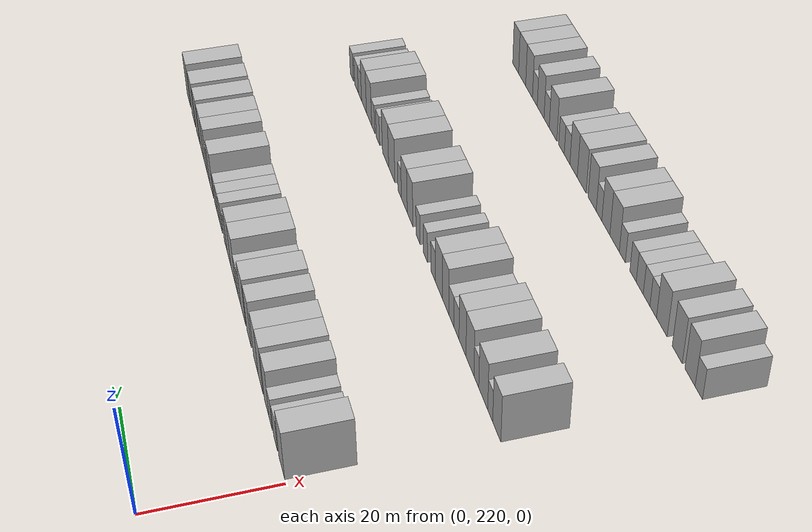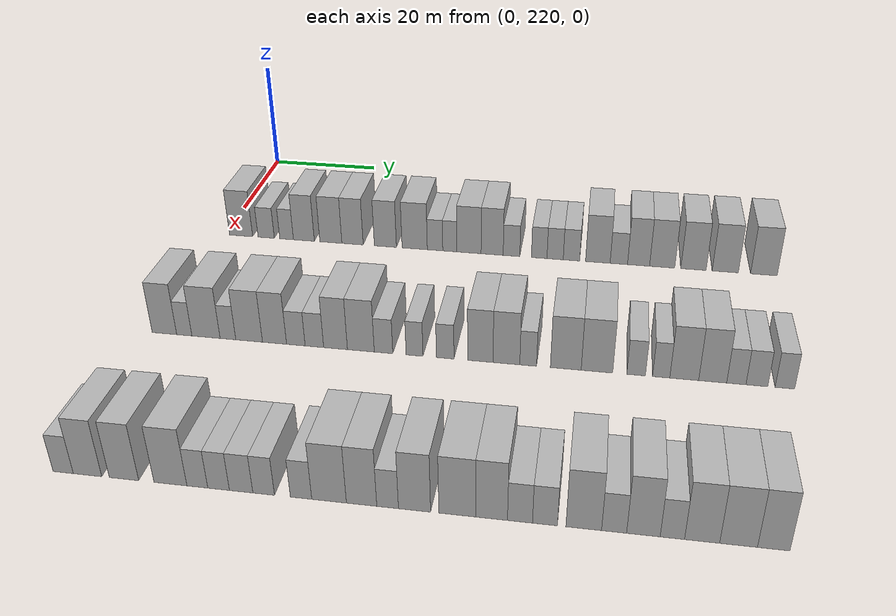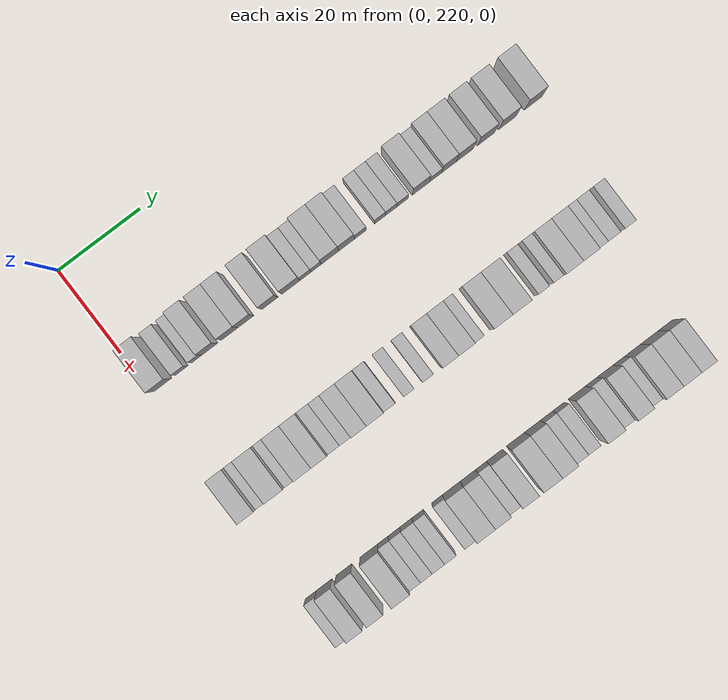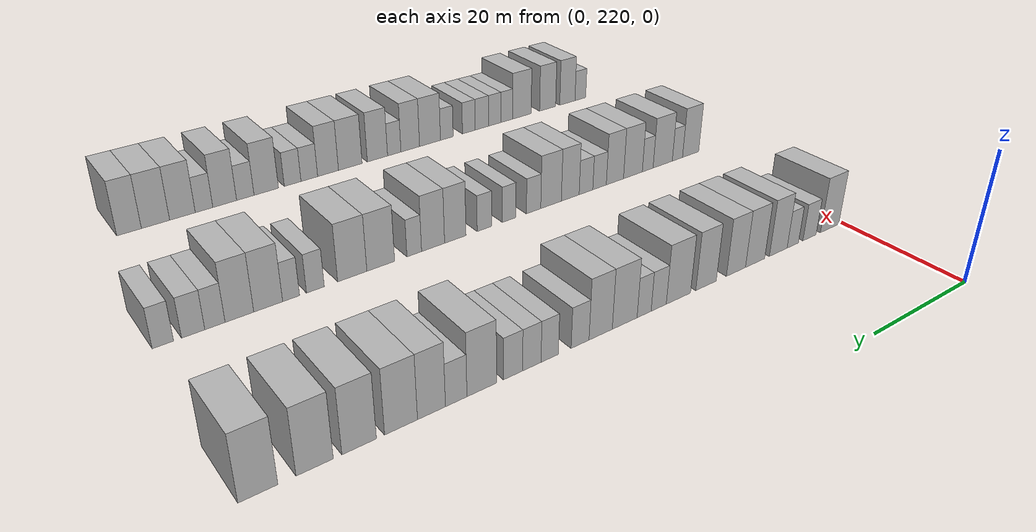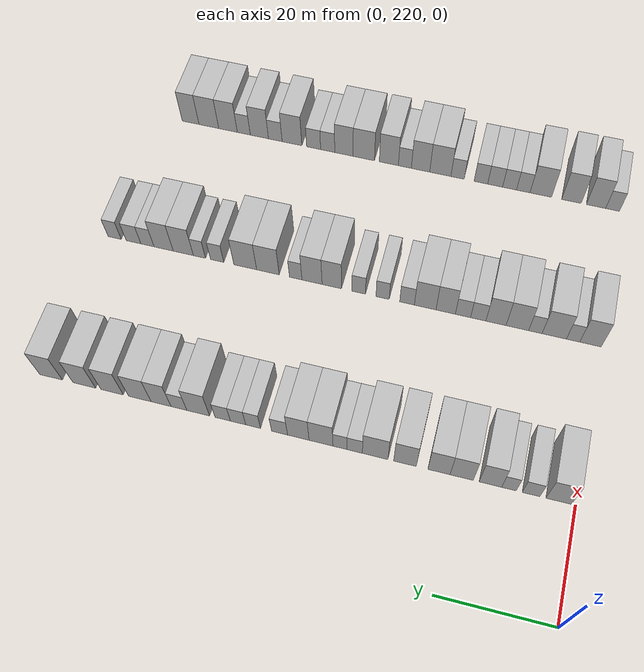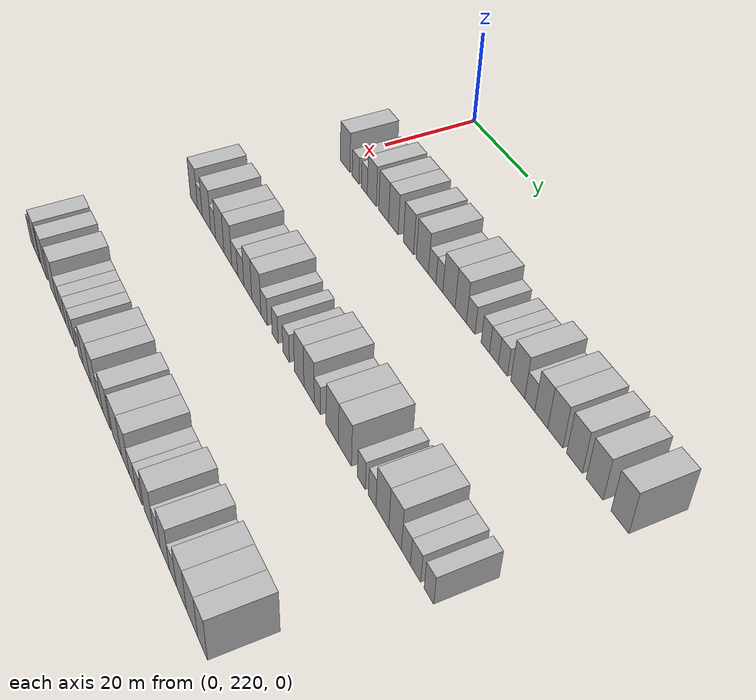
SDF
<sdf version="1.6">
 <world name="default">
  <model name="building_150">
   <static>1</static>
   <pose>25.0000 222.8629 0 0.000000 0.000000 0.000000</pose>
   <link name="link">
    <pose>0 0 4.50 0 0 0</pose>
    <collision name="collision"><geometry><box><size>10.0000 4.2605 9.0000</size></box></geometry></collision>
    <visual name="visual">
     <cast_shadows>0</cast_shadows>
     <geometry><box><size>10.0000 4.2605 9.0000</size></box></geometry>
     <material>
      <script>
       <uri>model://HANNAS_wall/materials/scripts</uri>
       <uri>model://HANNAS_wall/materials/textures</uri>
       <name>vrc/HANNAS_wall</name>
      </script>
     </material>
    </visual>
   </link>
  </model>
  <model name="building_151">
   <static>1</static>
   <pose>25.0000 227.4836 0 0.000000 0.000000 0.000000</pose>
   <link name="link">
    <pose>0 0 3.00 0 0 0</pose>
    <collision name="collision"><geometry><box><size>10.0000 2.9809 6.0000</size></box></geometry></collision>
    <visual name="visual">
     <cast_shadows>0</cast_shadows>
     <geometry><box><size>10.0000 2.9809 6.0000</size></box></geometry>
     <material>
      <script>
       <uri>model://HANNAS_wall/materials/scripts</uri>
       <uri>model://HANNAS_wall/materials/textures</uri>
       <name>vrc/HANNAS_wall</name>
      </script>
     </material>
    </visual>
   </link>
  </model>
  <model name="building_152">
   <static>1</static>
   <pose>25.0000 231.2204 0 0.000000 0.000000 0.000000</pose>
   <link name="link">
    <pose>0 0 3.00 0 0 0</pose>
    <collision name="collision"><geometry><box><size>10.0000 2.4926 6.0000</size></box></geometry></collision>
    <visual name="visual">
     <cast_shadows>0</cast_shadows>
     <geometry><box><size>10.0000 2.4926 6.0000</size></box></geometry>
     <material>
      <script>
       <uri>model://HANNAS_wall/materials/scripts</uri>
       <uri>model://HANNAS_wall/materials/textures</uri>
       <name>vrc/HANNAS_wall</name>
      </script>
     </material>
    </visual>
   </link>
  </model>
  <model name="building_153">
   <static>1</static>
   <pose>25.0000 234.3687 0 0.000000 0.000000 0.000000</pose>
   <link name="link">
    <pose>0 0 4.50 0 0 0</pose>
    <collision name="collision"><geometry><box><size>10.0000 3.8041 9.0000</size></box></geometry></collision>
    <visual name="visual">
     <cast_shadows>0</cast_shadows>
     <geometry><box><size>10.0000 3.8041 9.0000</size></box></geometry>
     <material>
      <script>
       <uri>model://HANNAS_wall/materials/scripts</uri>
       <uri>model://HANNAS_wall/materials/textures</uri>
       <name>vrc/HANNAS_wall</name>
      </script>
     </material>
    </visual>
   </link>
  </model>
  <model name="building_154">
   <static>1</static>
   <pose>25.0000 239.2609 0 0.000000 0.000000 0.000000</pose>
   <link name="link">
    <pose>0 0 4.50 0 0 0</pose>
    <collision name="collision"><geometry><box><size>10.0000 3.9802 9.0000</size></box></geometry></collision>
    <visual name="visual">
     <cast_shadows>0</cast_shadows>
     <geometry><box><size>10.0000 3.9802 9.0000</size></box></geometry>
     <material>
      <script>
       <uri>model://HANNAS_wall/materials/scripts</uri>
       <uri>model://HANNAS_wall/materials/textures</uri>
       <name>vrc/HANNAS_wall</name>
      </script>
     </material>
    </visual>
   </link>
  </model>
  <model name="building_155">
   <static>1</static>
   <pose>25.0000 243.1626 0 0.000000 0.000000 0.000000</pose>
   <link name="link">
    <pose>0 0 4.50 0 0 0</pose>
    <collision name="collision"><geometry><box><size>10.0000 3.8231 9.0000</size></box></geometry></collision>
    <visual name="visual">
     <cast_shadows>0</cast_shadows>
     <geometry><box><size>10.0000 3.8231 9.0000</size></box></geometry>
     <material>
      <script>
       <uri>model://HANNAS_wall/materials/scripts</uri>
       <uri>model://HANNAS_wall/materials/textures</uri>
       <name>vrc/HANNAS_wall</name>
      </script>
     </material>
    </visual>
   </link>
  </model>
  <model name="building_156">
   <static>1</static>
   <pose>25.0000 249.0395 0 0.000000 0.000000 0.000000</pose>
   <link name="link">
    <pose>0 0 4.50 0 0 0</pose>
    <collision name="collision"><geometry><box><size>10.0000 3.9307 9.0000</size></box></geometry></collision>
    <visual name="visual">
     <cast_shadows>0</cast_shadows>
     <geometry><box><size>10.0000 3.9307 9.0000</size></box></geometry>
     <material>
      <script>
       <uri>model://HANNAS_wall/materials/scripts</uri>
       <uri>model://HANNAS_wall/materials/textures</uri>
       <name>vrc/HANNAS_wall</name>
      </script>
     </material>
    </visual>
   </link>
  </model>
  <model name="building_157">
   <static>1</static>
   <pose>25.0000 254.2369 0 0.000000 0.000000 0.000000</pose>
   <link name="link">
    <pose>0 0 4.50 0 0 0</pose>
    <collision name="collision"><geometry><box><size>10.0000 4.4640 9.0000</size></box></geometry></collision>
    <visual name="visual">
     <cast_shadows>0</cast_shadows>
     <geometry><box><size>10.0000 4.4640 9.0000</size></box></geometry>
     <material>
      <script>
       <uri>model://HANNAS_wall/materials/scripts</uri>
       <uri>model://HANNAS_wall/materials/textures</uri>
       <name>vrc/HANNAS_wall</name>
      </script>
     </material>
    </visual>
   </link>
  </model>
  <model name="building_158">
   <static>1</static>
   <pose>25.0000 257.8265 0 0.000000 0.000000 0.000000</pose>
   <link name="link">
    <pose>0 0 3.00 0 0 0</pose>
    <collision name="collision"><geometry><box><size>10.0000 2.7153 6.0000</size></box></geometry></collision>
    <visual name="visual">
     <cast_shadows>0</cast_shadows>
     <geometry><box><size>10.0000 2.7153 6.0000</size></box></geometry>
     <material>
      <script>
       <uri>model://HANNAS_wall/materials/scripts</uri>
       <uri>model://HANNAS_wall/materials/textures</uri>
       <name>vrc/HANNAS_wall</name>
      </script>
     </material>
    </visual>
   </link>
  </model>
  <model name="building_159">
   <static>1</static>
   <pose>25.0000 260.4134 0 0.000000 0.000000 0.000000</pose>
   <link name="link">
    <pose>0 0 3.00 0 0 0</pose>
    <collision name="collision"><geometry><box><size>10.0000 2.4586 6.0000</size></box></geometry></collision>
    <visual name="visual">
     <cast_shadows>0</cast_shadows>
     <geometry><box><size>10.0000 2.4586 6.0000</size></box></geometry>
     <material>
      <script>
       <uri>model://HANNAS_wall/materials/scripts</uri>
       <uri>model://HANNAS_wall/materials/textures</uri>
       <name>vrc/HANNAS_wall</name>
      </script>
     </material>
    </visual>
   </link>
  </model>
  <model name="building_160">
   <static>1</static>
   <pose>25.0000 263.7593 0 0.000000 0.000000 0.000000</pose>
   <link name="link">
    <pose>0 0 4.50 0 0 0</pose>
    <collision name="collision"><geometry><box><size>10.0000 4.2332 9.0000</size></box></geometry></collision>
    <visual name="visual">
     <cast_shadows>0</cast_shadows>
     <geometry><box><size>10.0000 4.2332 9.0000</size></box></geometry>
     <material>
      <script>
       <uri>model://HANNAS_wall/materials/scripts</uri>
       <uri>model://HANNAS_wall/materials/textures</uri>
       <name>vrc/HANNAS_wall</name>
      </script>
     </material>
    </visual>
   </link>
  </model>
  <model name="building_161">
   <static>1</static>
   <pose>25.0000 267.7927 0 0.000000 0.000000 0.000000</pose>
   <link name="link">
    <pose>0 0 4.50 0 0 0</pose>
    <collision name="collision"><geometry><box><size>10.0000 3.8337 9.0000</size></box></geometry></collision>
    <visual name="visual">
     <cast_shadows>0</cast_shadows>
     <geometry><box><size>10.0000 3.8337 9.0000</size></box></geometry>
     <material>
      <script>
       <uri>model://HANNAS_wall/materials/scripts</uri>
       <uri>model://HANNAS_wall/materials/textures</uri>
       <name>vrc/HANNAS_wall</name>
      </script>
     </material>
    </visual>
   </link>
  </model>
  <model name="building_162">
   <static>1</static>
   <pose>25.0000 271.1417 0 0.000000 0.000000 0.000000</pose>
   <link name="link">
    <pose>0 0 3.00 0 0 0</pose>
    <collision name="collision"><geometry><box><size>10.0000 2.8642 6.0000</size></box></geometry></collision>
    <visual name="visual">
     <cast_shadows>0</cast_shadows>
     <geometry><box><size>10.0000 2.8642 6.0000</size></box></geometry>
     <material>
      <script>
       <uri>model://HANNAS_wall/materials/scripts</uri>
       <uri>model://HANNAS_wall/materials/textures</uri>
       <name>vrc/HANNAS_wall</name>
      </script>
     </material>
    </visual>
   </link>
  </model>
  <model name="building_163">
   <static>1</static>
   <pose>25.0000 275.9058 0 0.000000 0.000000 0.000000</pose>
   <link name="link">
    <pose>0 0 3.00 0 0 0</pose>
    <collision name="collision"><geometry><box><size>10.0000 2.6641 6.0000</size></box></geometry></collision>
    <visual name="visual">
     <cast_shadows>0</cast_shadows>
     <geometry><box><size>10.0000 2.6641 6.0000</size></box></geometry>
     <material>
      <script>
       <uri>model://HANNAS_wall/materials/scripts</uri>
       <uri>model://HANNAS_wall/materials/textures</uri>
       <name>vrc/HANNAS_wall</name>
      </script>
     </material>
    </visual>
   </link>
  </model>
  <model name="building_164">
   <static>1</static>
   <pose>25.0000 278.6231 0 0.000000 0.000000 0.000000</pose>
   <link name="link">
    <pose>0 0 3.00 0 0 0</pose>
    <collision name="collision"><geometry><box><size>10.0000 2.7704 6.0000</size></box></geometry></collision>
    <visual name="visual">
     <cast_shadows>0</cast_shadows>
     <geometry><box><size>10.0000 2.7704 6.0000</size></box></geometry>
     <material>
      <script>
       <uri>model://HANNAS_wall/materials/scripts</uri>
       <uri>model://HANNAS_wall/materials/textures</uri>
       <name>vrc/HANNAS_wall</name>
      </script>
     </material>
    </visual>
   </link>
  </model>
  <model name="building_165">
   <static>1</static>
   <pose>25.0000 281.4026 0 0.000000 0.000000 0.000000</pose>
   <link name="link">
    <pose>0 0 3.00 0 0 0</pose>
    <collision name="collision"><geometry><box><size>10.0000 2.7887 6.0000</size></box></geometry></collision>
    <visual name="visual">
     <cast_shadows>0</cast_shadows>
     <geometry><box><size>10.0000 2.7887 6.0000</size></box></geometry>
     <material>
      <script>
       <uri>model://HANNAS_wall/materials/scripts</uri>
       <uri>model://HANNAS_wall/materials/textures</uri>
       <name>vrc/HANNAS_wall</name>
      </script>
     </material>
    </visual>
   </link>
  </model>
  <model name="building_166">
   <static>1</static>
   <pose>25.0000 285.8721 0 0.000000 0.000000 0.000000</pose>
   <link name="link">
    <pose>0 0 4.50 0 0 0</pose>
    <collision name="collision"><geometry><box><size>10.0000 4.1503 9.0000</size></box></geometry></collision>
    <visual name="visual">
     <cast_shadows>0</cast_shadows>
     <geometry><box><size>10.0000 4.1503 9.0000</size></box></geometry>
     <material>
      <script>
       <uri>model://HANNAS_wall/materials/scripts</uri>
       <uri>model://HANNAS_wall/materials/textures</uri>
       <name>vrc/HANNAS_wall</name>
      </script>
     </material>
    </visual>
   </link>
  </model>
  <model name="building_167">
   <static>1</static>
   <pose>25.0000 289.4068 0 0.000000 0.000000 0.000000</pose>
   <link name="link">
    <pose>0 0 3.00 0 0 0</pose>
    <collision name="collision"><geometry><box><size>10.0000 2.9191 6.0000</size></box></geometry></collision>
    <visual name="visual">
     <cast_shadows>0</cast_shadows>
     <geometry><box><size>10.0000 2.9191 6.0000</size></box></geometry>
     <material>
      <script>
       <uri>model://HANNAS_wall/materials/scripts</uri>
       <uri>model://HANNAS_wall/materials/textures</uri>
       <name>vrc/HANNAS_wall</name>
      </script>
     </material>
    </visual>
   </link>
  </model>
  <model name="building_168">
   <static>1</static>
   <pose>25.0000 292.7083 0 0.000000 0.000000 0.000000</pose>
   <link name="link">
    <pose>0 0 4.50 0 0 0</pose>
    <collision name="collision"><geometry><box><size>10.0000 3.6837 9.0000</size></box></geometry></collision>
    <visual name="visual">
     <cast_shadows>0</cast_shadows>
     <geometry><box><size>10.0000 3.6837 9.0000</size></box></geometry>
     <material>
      <script>
       <uri>model://HANNAS_wall/materials/scripts</uri>
       <uri>model://HANNAS_wall/materials/textures</uri>
       <name>vrc/HANNAS_wall</name>
      </script>
     </material>
    </visual>
   </link>
  </model>
  <model name="building_169">
   <static>1</static>
   <pose>25.0000 296.6415 0 0.000000 0.000000 0.000000</pose>
   <link name="link">
    <pose>0 0 4.50 0 0 0</pose>
    <collision name="collision"><geometry><box><size>10.0000 4.1828 9.0000</size></box></geometry></collision>
    <visual name="visual">
     <cast_shadows>0</cast_shadows>
     <geometry><box><size>10.0000 4.1828 9.0000</size></box></geometry>
     <material>
      <script>
       <uri>model://HANNAS_wall/materials/scripts</uri>
       <uri>model://HANNAS_wall/materials/textures</uri>
       <name>vrc/HANNAS_wall</name>
      </script>
     </material>
    </visual>
   </link>
  </model>
  <model name="building_170">
   <static>1</static>
   <pose>25.0000 301.8199 0 0.000000 0.000000 0.000000</pose>
   <link name="link">
    <pose>0 0 4.50 0 0 0</pose>
    <collision name="collision"><geometry><box><size>10.0000 4.1740 9.0000</size></box></geometry></collision>
    <visual name="visual">
     <cast_shadows>0</cast_shadows>
     <geometry><box><size>10.0000 4.1740 9.0000</size></box></geometry>
     <material>
      <script>
       <uri>model://HANNAS_wall/materials/scripts</uri>
       <uri>model://HANNAS_wall/materials/textures</uri>
       <name>vrc/HANNAS_wall</name>
      </script>
     </material>
    </visual>
   </link>
  </model>
  <model name="building_171">
   <static>1</static>
   <pose>25.0000 307.0449 0 0.000000 0.000000 0.000000</pose>
   <link name="link">
    <pose>0 0 4.50 0 0 0</pose>
    <collision name="collision"><geometry><box><size>10.0000 4.2760 9.0000</size></box></geometry></collision>
    <visual name="visual">
     <cast_shadows>0</cast_shadows>
     <geometry><box><size>10.0000 4.2760 9.0000</size></box></geometry>
     <material>
      <script>
       <uri>model://HANNAS_wall/materials/scripts</uri>
       <uri>model://HANNAS_wall/materials/textures</uri>
       <name>vrc/HANNAS_wall</name>
      </script>
     </material>
    </visual>
   </link>
  </model>
  <model name="building_172">
   <static>1</static>
   <pose>25.0000 313.3371 0 0.000000 0.000000 0.000000</pose>
   <link name="link">
    <pose>0 0 4.50 0 0 0</pose>
    <collision name="collision"><geometry><box><size>10.0000 4.3084 9.0000</size></box></geometry></collision>
    <visual name="visual">
     <cast_shadows>0</cast_shadows>
     <geometry><box><size>10.0000 4.3084 9.0000</size></box></geometry>
     <material>
      <script>
       <uri>model://HANNAS_wall/materials/scripts</uri>
       <uri>model://HANNAS_wall/materials/textures</uri>
       <name>vrc/HANNAS_wall</name>
      </script>
     </material>
    </visual>
   </link>
  </model>
  <model name="building_380">
   <static>1</static>
   <pose>55.0000 221.4509 0 0.000000 0.000000 0.000000</pose>
   <link name="link">
    <pose>0 0 4.50 0 0 0</pose>
    <collision name="collision"><geometry><box><size>10.0000 3.9010 9.0000</size></box></geometry></collision>
    <visual name="visual">
     <cast_shadows>0</cast_shadows>
     <geometry><box><size>10.0000 3.9010 9.0000</size></box></geometry>
     <material>
      <script>
       <uri>model://HANNAS_wall/materials/scripts</uri>
       <uri>model://HANNAS_wall/materials/textures</uri>
       <name>vrc/HANNAS_wall</name>
      </script>
     </material>
    </visual>
   </link>
  </model>
  <model name="building_381">
   <static>1</static>
   <pose>55.0000 224.6089 0 0.000000 0.000000 0.000000</pose>
   <link name="link">
    <pose>0 0 3.00 0 0 0</pose>
    <collision name="collision"><geometry><box><size>10.0000 2.4150 6.0000</size></box></geometry></collision>
    <visual name="visual">
     <cast_shadows>0</cast_shadows>
     <geometry><box><size>10.0000 2.4150 6.0000</size></box></geometry>
     <material>
      <script>
       <uri>model://HANNAS_wall/materials/scripts</uri>
       <uri>model://HANNAS_wall/materials/textures</uri>
       <name>vrc/HANNAS_wall</name>
      </script>
     </material>
    </visual>
   </link>
  </model>
  <model name="building_382">
   <static>1</static>
   <pose>55.0000 228.0401 0 0.000000 0.000000 0.000000</pose>
   <link name="link">
    <pose>0 0 4.50 0 0 0</pose>
    <collision name="collision"><geometry><box><size>10.0000 4.4473 9.0000</size></box></geometry></collision>
    <visual name="visual">
     <cast_shadows>0</cast_shadows>
     <geometry><box><size>10.0000 4.4473 9.0000</size></box></geometry>
     <material>
      <script>
       <uri>model://HANNAS_wall/materials/scripts</uri>
       <uri>model://HANNAS_wall/materials/textures</uri>
       <name>vrc/HANNAS_wall</name>
      </script>
     </material>
    </visual>
   </link>
  </model>
  <model name="building_383">
   <static>1</static>
   <pose>55.0000 231.4915 0 0.000000 0.000000 0.000000</pose>
   <link name="link">
    <pose>0 0 3.00 0 0 0</pose>
    <collision name="collision"><geometry><box><size>10.0000 2.4556 6.0000</size></box></geometry></collision>
    <visual name="visual">
     <cast_shadows>0</cast_shadows>
     <geometry><box><size>10.0000 2.4556 6.0000</size></box></geometry>
     <material>
      <script>
       <uri>model://HANNAS_wall/materials/scripts</uri>
       <uri>model://HANNAS_wall/materials/textures</uri>
       <name>vrc/HANNAS_wall</name>
      </script>
     </material>
    </visual>
   </link>
  </model>
  <model name="building_384">
   <static>1</static>
   <pose>55.0000 234.8037 0 0.000000 0.000000 0.000000</pose>
   <link name="link">
    <pose>0 0 4.50 0 0 0</pose>
    <collision name="collision"><geometry><box><size>10.0000 4.1688 9.0000</size></box></geometry></collision>
    <visual name="visual">
     <cast_shadows>0</cast_shadows>
     <geometry><box><size>10.0000 4.1688 9.0000</size></box></geometry>
     <material>
      <script>
       <uri>model://HANNAS_wall/materials/scripts</uri>
       <uri>model://HANNAS_wall/materials/textures</uri>
       <name>vrc/HANNAS_wall</name>
      </script>
     </material>
    </visual>
   </link>
  </model>
  <model name="building_385">
   <static>1</static>
   <pose>55.0000 238.7515 0 0.000000 0.000000 0.000000</pose>
   <link name="link">
    <pose>0 0 4.50 0 0 0</pose>
    <collision name="collision"><geometry><box><size>10.0000 3.7267 9.0000</size></box></geometry></collision>
    <visual name="visual">
     <cast_shadows>0</cast_shadows>
     <geometry><box><size>10.0000 3.7267 9.0000</size></box></geometry>
     <material>
      <script>
       <uri>model://HANNAS_wall/materials/scripts</uri>
       <uri>model://HANNAS_wall/materials/textures</uri>
       <name>vrc/HANNAS_wall</name>
      </script>
     </material>
    </visual>
   </link>
  </model>
  <model name="building_386">
   <static>1</static>
   <pose>55.0000 242.0440 0 0.000000 0.000000 0.000000</pose>
   <link name="link">
    <pose>0 0 3.00 0 0 0</pose>
    <collision name="collision"><geometry><box><size>10.0000 2.8584 6.0000</size></box></geometry></collision>
    <visual name="visual">
     <cast_shadows>0</cast_shadows>
     <geometry><box><size>10.0000 2.8584 6.0000</size></box></geometry>
     <material>
      <script>
       <uri>model://HANNAS_wall/materials/scripts</uri>
       <uri>model://HANNAS_wall/materials/textures</uri>
       <name>vrc/HANNAS_wall</name>
      </script>
     </material>
    </visual>
   </link>
  </model>
  <model name="building_387">
   <static>1</static>
   <pose>55.0000 244.8909 0 0.000000 0.000000 0.000000</pose>
   <link name="link">
    <pose>0 0 3.00 0 0 0</pose>
    <collision name="collision"><geometry><box><size>10.0000 2.8355 6.0000</size></box></geometry></collision>
    <visual name="visual">
     <cast_shadows>0</cast_shadows>
     <geometry><box><size>10.0000 2.8355 6.0000</size></box></geometry>
     <material>
      <script>
       <uri>model://HANNAS_wall/materials/scripts</uri>
       <uri>model://HANNAS_wall/materials/textures</uri>
       <name>vrc/HANNAS_wall</name>
      </script>
     </material>
    </visual>
   </link>
  </model>
  <model name="building_388">
   <static>1</static>
   <pose>55.0000 248.1203 0 0.000000 0.000000 0.000000</pose>
   <link name="link">
    <pose>0 0 4.50 0 0 0</pose>
    <collision name="collision"><geometry><box><size>10.0000 3.6233 9.0000</size></box></geometry></collision>
    <visual name="visual">
     <cast_shadows>0</cast_shadows>
     <geometry><box><size>10.0000 3.6233 9.0000</size></box></geometry>
     <material>
      <script>
       <uri>model://HANNAS_wall/materials/scripts</uri>
       <uri>model://HANNAS_wall/materials/textures</uri>
       <name>vrc/HANNAS_wall</name>
      </script>
     </material>
    </visual>
   </link>
  </model>
  <model name="building_389">
   <static>1</static>
   <pose>55.0000 251.9669 0 0.000000 0.000000 0.000000</pose>
   <link name="link">
    <pose>0 0 4.50 0 0 0</pose>
    <collision name="collision"><geometry><box><size>10.0000 4.0700 9.0000</size></box></geometry></collision>
    <visual name="visual">
     <cast_shadows>0</cast_shadows>
     <geometry><box><size>10.0000 4.0700 9.0000</size></box></geometry>
     <material>
      <script>
       <uri>model://HANNAS_wall/materials/scripts</uri>
       <uri>model://HANNAS_wall/materials/textures</uri>
       <name>vrc/HANNAS_wall</name>
      </script>
     </material>
    </visual>
   </link>
  </model>
  <model name="building_390">
   <static>1</static>
   <pose>55.0000 255.3913 0 0.000000 0.000000 0.000000</pose>
   <link name="link">
    <pose>0 0 3.00 0 0 0</pose>
    <collision name="collision"><geometry><box><size>10.0000 2.7787 6.0000</size></box></geometry></collision>
    <visual name="visual">
     <cast_shadows>0</cast_shadows>
     <geometry><box><size>10.0000 2.7787 6.0000</size></box></geometry>
     <material>
      <script>
       <uri>model://HANNAS_wall/materials/scripts</uri>
       <uri>model://HANNAS_wall/materials/textures</uri>
       <name>vrc/HANNAS_wall</name>
      </script>
     </material>
    </visual>
   </link>
  </model>
  <model name="building_391">
   <static>1</static>
   <pose>55.0000 260.0381 0 0.000000 0.000000 0.000000</pose>
   <link name="link">
    <pose>0 0 3.00 0 0 0</pose>
    <collision name="collision"><geometry><box><size>10.0000 2.5150 6.0000</size></box></geometry></collision>
    <visual name="visual">
     <cast_shadows>0</cast_shadows>
     <geometry><box><size>10.0000 2.5150 6.0000</size></box></geometry>
     <material>
      <script>
       <uri>model://HANNAS_wall/materials/scripts</uri>
       <uri>model://HANNAS_wall/materials/textures</uri>
       <name>vrc/HANNAS_wall</name>
      </script>
     </material>
    </visual>
   </link>
  </model>
  <model name="building_392">
   <static>1</static>
   <pose>55.0000 264.5997 0 0.000000 0.000000 0.000000</pose>
   <link name="link">
    <pose>0 0 3.00 0 0 0</pose>
    <collision name="collision"><geometry><box><size>10.0000 2.6081 6.0000</size></box></geometry></collision>
    <visual name="visual">
     <cast_shadows>0</cast_shadows>
     <geometry><box><size>10.0000 2.6081 6.0000</size></box></geometry>
     <material>
      <script>
       <uri>model://HANNAS_wall/materials/scripts</uri>
       <uri>model://HANNAS_wall/materials/textures</uri>
       <name>vrc/HANNAS_wall</name>
      </script>
     </material>
    </visual>
   </link>
  </model>
  <model name="building_393">
   <static>1</static>
   <pose>55.0000 269.7732 0 0.000000 0.000000 0.000000</pose>
   <link name="link">
    <pose>0 0 4.50 0 0 0</pose>
    <collision name="collision"><geometry><box><size>10.0000 3.7389 9.0000</size></box></geometry></collision>
    <visual name="visual">
     <cast_shadows>0</cast_shadows>
     <geometry><box><size>10.0000 3.7389 9.0000</size></box></geometry>
     <material>
      <script>
       <uri>model://HANNAS_wall/materials/scripts</uri>
       <uri>model://HANNAS_wall/materials/textures</uri>
       <name>vrc/HANNAS_wall</name>
      </script>
     </material>
    </visual>
   </link>
  </model>
  <model name="building_394">
   <static>1</static>
   <pose>55.0000 273.5979 0 0.000000 0.000000 0.000000</pose>
   <link name="link">
    <pose>0 0 4.50 0 0 0</pose>
    <collision name="collision"><geometry><box><size>10.0000 3.9105 9.0000</size></box></geometry></collision>
    <visual name="visual">
     <cast_shadows>0</cast_shadows>
     <geometry><box><size>10.0000 3.9105 9.0000</size></box></geometry>
     <material>
      <script>
       <uri>model://HANNAS_wall/materials/scripts</uri>
       <uri>model://HANNAS_wall/materials/textures</uri>
       <name>vrc/HANNAS_wall</name>
      </script>
     </material>
    </visual>
   </link>
  </model>
  <model name="building_395">
   <static>1</static>
   <pose>55.0000 276.7687 0 0.000000 0.000000 0.000000</pose>
   <link name="link">
    <pose>0 0 3.00 0 0 0</pose>
    <collision name="collision"><geometry><box><size>10.0000 2.4310 6.0000</size></box></geometry></collision>
    <visual name="visual">
     <cast_shadows>0</cast_shadows>
     <geometry><box><size>10.0000 2.4310 6.0000</size></box></geometry>
     <material>
      <script>
       <uri>model://HANNAS_wall/materials/scripts</uri>
       <uri>model://HANNAS_wall/materials/textures</uri>
       <name>vrc/HANNAS_wall</name>
      </script>
     </material>
    </visual>
   </link>
  </model>
  <model name="building_396">
   <static>1</static>
   <pose>55.0000 282.1970 0 0.000000 0.000000 0.000000</pose>
   <link name="link">
    <pose>0 0 4.50 0 0 0</pose>
    <collision name="collision"><geometry><box><size>10.0000 4.4257 9.0000</size></box></geometry></collision>
    <visual name="visual">
     <cast_shadows>0</cast_shadows>
     <geometry><box><size>10.0000 4.4257 9.0000</size></box></geometry>
     <material>
      <script>
       <uri>model://HANNAS_wall/materials/scripts</uri>
       <uri>model://HANNAS_wall/materials/textures</uri>
       <name>vrc/HANNAS_wall</name>
      </script>
     </material>
    </visual>
   </link>
  </model>
  <model name="building_397">
   <static>1</static>
   <pose>55.0000 286.6593 0 0.000000 0.000000 0.000000</pose>
   <link name="link">
    <pose>0 0 4.50 0 0 0</pose>
    <collision name="collision"><geometry><box><size>10.0000 4.4989 9.0000</size></box></geometry></collision>
    <visual name="visual">
     <cast_shadows>0</cast_shadows>
     <geometry><box><size>10.0000 4.4989 9.0000</size></box></geometry>
     <material>
      <script>
       <uri>model://HANNAS_wall/materials/scripts</uri>
       <uri>model://HANNAS_wall/materials/textures</uri>
       <name>vrc/HANNAS_wall</name>
      </script>
     </material>
    </visual>
   </link>
  </model>
  <model name="building_398">
   <static>1</static>
   <pose>55.0000 292.2225 0 0.000000 0.000000 0.000000</pose>
   <link name="link">
    <pose>0 0 3.00 0 0 0</pose>
    <collision name="collision"><geometry><box><size>10.0000 2.6274 6.0000</size></box></geometry></collision>
    <visual name="visual">
     <cast_shadows>0</cast_shadows>
     <geometry><box><size>10.0000 2.6274 6.0000</size></box></geometry>
     <material>
      <script>
       <uri>model://HANNAS_wall/materials/scripts</uri>
       <uri>model://HANNAS_wall/materials/textures</uri>
       <name>vrc/HANNAS_wall</name>
      </script>
     </material>
    </visual>
   </link>
  </model>
  <model name="building_399">
   <static>1</static>
   <pose>55.0000 295.7476 0 0.000000 0.000000 0.000000</pose>
   <link name="link">
    <pose>0 0 3.00 0 0 0</pose>
    <collision name="collision"><geometry><box><size>10.0000 2.4227 6.0000</size></box></geometry></collision>
    <visual name="visual">
     <cast_shadows>0</cast_shadows>
     <geometry><box><size>10.0000 2.4227 6.0000</size></box></geometry>
     <material>
      <script>
       <uri>model://HANNAS_wall/materials/scripts</uri>
       <uri>model://HANNAS_wall/materials/textures</uri>
       <name>vrc/HANNAS_wall</name>
      </script>
     </material>
    </visual>
   </link>
  </model>
  <model name="building_400">
   <static>1</static>
   <pose>55.0000 298.9763 0 0.000000 0.000000 0.000000</pose>
   <link name="link">
    <pose>0 0 4.50 0 0 0</pose>
    <collision name="collision"><geometry><box><size>10.0000 4.0347 9.0000</size></box></geometry></collision>
    <visual name="visual">
     <cast_shadows>0</cast_shadows>
     <geometry><box><size>10.0000 4.0347 9.0000</size></box></geometry>
     <material>
      <script>
       <uri>model://HANNAS_wall/materials/scripts</uri>
       <uri>model://HANNAS_wall/materials/textures</uri>
       <name>vrc/HANNAS_wall</name>
      </script>
     </material>
    </visual>
   </link>
  </model>
  <model name="building_401">
   <static>1</static>
   <pose>55.0000 302.9331 0 0.000000 0.000000 0.000000</pose>
   <link name="link">
    <pose>0 0 4.50 0 0 0</pose>
    <collision name="collision"><geometry><box><size>10.0000 3.8789 9.0000</size></box></geometry></collision>
    <visual name="visual">
     <cast_shadows>0</cast_shadows>
     <geometry><box><size>10.0000 3.8789 9.0000</size></box></geometry>
     <material>
      <script>
       <uri>model://HANNAS_wall/materials/scripts</uri>
       <uri>model://HANNAS_wall/materials/textures</uri>
       <name>vrc/HANNAS_wall</name>
      </script>
     </material>
    </visual>
   </link>
  </model>
  <model name="building_402">
   <static>1</static>
   <pose>55.0000 306.2040 0 0.000000 0.000000 0.000000</pose>
   <link name="link">
    <pose>0 0 3.00 0 0 0</pose>
    <collision name="collision"><geometry><box><size>10.0000 2.6629 6.0000</size></box></geometry></collision>
    <visual name="visual">
     <cast_shadows>0</cast_shadows>
     <geometry><box><size>10.0000 2.6629 6.0000</size></box></geometry>
     <material>
      <script>
       <uri>model://HANNAS_wall/materials/scripts</uri>
       <uri>model://HANNAS_wall/materials/textures</uri>
       <name>vrc/HANNAS_wall</name>
      </script>
     </material>
    </visual>
   </link>
  </model>
  <model name="building_403">
   <static>1</static>
   <pose>55.0000 309.0290 0 0.000000 0.000000 0.000000</pose>
   <link name="link">
    <pose>0 0 3.00 0 0 0</pose>
    <collision name="collision"><geometry><box><size>10.0000 2.9870 6.0000</size></box></geometry></collision>
    <visual name="visual">
     <cast_shadows>0</cast_shadows>
     <geometry><box><size>10.0000 2.9870 6.0000</size></box></geometry>
     <material>
      <script>
       <uri>model://HANNAS_wall/materials/scripts</uri>
       <uri>model://HANNAS_wall/materials/textures</uri>
       <name>vrc/HANNAS_wall</name>
      </script>
     </material>
    </visual>
   </link>
  </model>
  <model name="building_404">
   <static>1</static>
   <pose>55.0000 312.8581 0 0.000000 0.000000 0.000000</pose>
   <link name="link">
    <pose>0 0 3.00 0 0 0</pose>
    <collision name="collision"><geometry><box><size>10.0000 2.6712 6.0000</size></box></geometry></collision>
    <visual name="visual">
     <cast_shadows>0</cast_shadows>
     <geometry><box><size>10.0000 2.6712 6.0000</size></box></geometry>
     <material>
      <script>
       <uri>model://HANNAS_wall/materials/scripts</uri>
       <uri>model://HANNAS_wall/materials/textures</uri>
       <name>vrc/HANNAS_wall</name>
      </script>
     </material>
    </visual>
   </link>
  </model>
  <model name="building_617">
   <static>1</static>
   <pose>85.0000 221.0137 0 0.000000 0.000000 0.000000</pose>
   <link name="link">
    <pose>0 0 3.00 0 0 0</pose>
    <collision name="collision"><geometry><box><size>10.0000 2.6995 6.0000</size></box></geometry></collision>
    <visual name="visual">
     <cast_shadows>0</cast_shadows>
     <geometry><box><size>10.0000 2.6995 6.0000</size></box></geometry>
     <material>
      <script>
       <uri>model://HANNAS_wall/materials/scripts</uri>
       <uri>model://HANNAS_wall/materials/textures</uri>
       <name>vrc/HANNAS_wall</name>
      </script>
     </material>
    </visual>
   </link>
  </model>
  <model name="building_618">
   <static>1</static>
   <pose>85.0000 224.2528 0 0.000000 0.000000 0.000000</pose>
   <link name="link">
    <pose>0 0 4.50 0 0 0</pose>
    <collision name="collision"><geometry><box><size>10.0000 3.7789 9.0000</size></box></geometry></collision>
    <visual name="visual">
     <cast_shadows>0</cast_shadows>
     <geometry><box><size>10.0000 3.7789 9.0000</size></box></geometry>
     <material>
      <script>
       <uri>model://HANNAS_wall/materials/scripts</uri>
       <uri>model://HANNAS_wall/materials/textures</uri>
       <name>vrc/HANNAS_wall</name>
      </script>
     </material>
    </visual>
   </link>
  </model>
  <model name="building_619">
   <static>1</static>
   <pose>85.0000 229.0721 0 0.000000 0.000000 0.000000</pose>
   <link name="link">
    <pose>0 0 4.50 0 0 0</pose>
    <collision name="collision"><geometry><box><size>10.0000 3.8597 9.0000</size></box></geometry></collision>
    <visual name="visual">
     <cast_shadows>0</cast_shadows>
     <geometry><box><size>10.0000 3.8597 9.0000</size></box></geometry>
     <material>
      <script>
       <uri>model://HANNAS_wall/materials/scripts</uri>
       <uri>model://HANNAS_wall/materials/textures</uri>
       <name>vrc/HANNAS_wall</name>
      </script>
     </material>
    </visual>
   </link>
  </model>
  <model name="building_620">
   <static>1</static>
   <pose>85.0000 235.1444 0 0.000000 0.000000 0.000000</pose>
   <link name="link">
    <pose>0 0 4.50 0 0 0</pose>
    <collision name="collision"><geometry><box><size>10.0000 4.2848 9.0000</size></box></geometry></collision>
    <visual name="visual">
     <cast_shadows>0</cast_shadows>
     <geometry><box><size>10.0000 4.2848 9.0000</size></box></geometry>
     <material>
      <script>
       <uri>model://HANNAS_wall/materials/scripts</uri>
       <uri>model://HANNAS_wall/materials/textures</uri>
       <name>vrc/HANNAS_wall</name>
      </script>
     </material>
    </visual>
   </link>
  </model>
  <model name="building_621">
   <static>1</static>
   <pose>85.0000 238.6307 0 0.000000 0.000000 0.000000</pose>
   <link name="link">
    <pose>0 0 3.00 0 0 0</pose>
    <collision name="collision"><geometry><box><size>10.0000 2.6877 6.0000</size></box></geometry></collision>
    <visual name="visual">
     <cast_shadows>0</cast_shadows>
     <geometry><box><size>10.0000 2.6877 6.0000</size></box></geometry>
     <material>
      <script>
       <uri>model://HANNAS_wall/materials/scripts</uri>
       <uri>model://HANNAS_wall/materials/textures</uri>
       <name>vrc/HANNAS_wall</name>
      </script>
     </material>
    </visual>
   </link>
  </model>
  <model name="building_622">
   <static>1</static>
   <pose>85.0000 241.3642 0 0.000000 0.000000 0.000000</pose>
   <link name="link">
    <pose>0 0 3.00 0 0 0</pose>
    <collision name="collision"><geometry><box><size>10.0000 2.7793 6.0000</size></box></geometry></collision>
    <visual name="visual">
     <cast_shadows>0</cast_shadows>
     <geometry><box><size>10.0000 2.7793 6.0000</size></box></geometry>
     <material>
      <script>
       <uri>model://HANNAS_wall/materials/scripts</uri>
       <uri>model://HANNAS_wall/materials/textures</uri>
       <name>vrc/HANNAS_wall</name>
      </script>
     </material>
    </visual>
   </link>
  </model>
  <model name="building_623">
   <static>1</static>
   <pose>85.0000 244.2480 0 0.000000 0.000000 0.000000</pose>
   <link name="link">
    <pose>0 0 3.00 0 0 0</pose>
    <collision name="collision"><geometry><box><size>10.0000 2.9884 6.0000</size></box></geometry></collision>
    <visual name="visual">
     <cast_shadows>0</cast_shadows>
     <geometry><box><size>10.0000 2.9884 6.0000</size></box></geometry>
     <material>
      <script>
       <uri>model://HANNAS_wall/materials/scripts</uri>
       <uri>model://HANNAS_wall/materials/textures</uri>
       <name>vrc/HANNAS_wall</name>
      </script>
     </material>
    </visual>
   </link>
  </model>
  <model name="building_624">
   <static>1</static>
   <pose>85.0000 247.1139 0 0.000000 0.000000 0.000000</pose>
   <link name="link">
    <pose>0 0 3.00 0 0 0</pose>
    <collision name="collision"><geometry><box><size>10.0000 2.7433 6.0000</size></box></geometry></collision>
    <visual name="visual">
     <cast_shadows>0</cast_shadows>
     <geometry><box><size>10.0000 2.7433 6.0000</size></box></geometry>
     <material>
      <script>
       <uri>model://HANNAS_wall/materials/scripts</uri>
       <uri>model://HANNAS_wall/materials/textures</uri>
       <name>vrc/HANNAS_wall</name>
      </script>
     </material>
    </visual>
   </link>
  </model>
  <model name="building_625">
   <static>1</static>
   <pose>85.0000 251.8263 0 0.000000 0.000000 0.000000</pose>
   <link name="link">
    <pose>0 0 3.00 0 0 0</pose>
    <collision name="collision"><geometry><box><size>10.0000 2.6816 6.0000</size></box></geometry></collision>
    <visual name="visual">
     <cast_shadows>0</cast_shadows>
     <geometry><box><size>10.0000 2.6816 6.0000</size></box></geometry>
     <material>
      <script>
       <uri>model://HANNAS_wall/materials/scripts</uri>
       <uri>model://HANNAS_wall/materials/textures</uri>
       <name>vrc/HANNAS_wall</name>
      </script>
     </material>
    </visual>
   </link>
  </model>
  <model name="building_626">
   <static>1</static>
   <pose>85.0000 255.3271 0 0.000000 0.000000 0.000000</pose>
   <link name="link">
    <pose>0 0 4.50 0 0 0</pose>
    <collision name="collision"><geometry><box><size>10.0000 4.3200 9.0000</size></box></geometry></collision>
    <visual name="visual">
     <cast_shadows>0</cast_shadows>
     <geometry><box><size>10.0000 4.3200 9.0000</size></box></geometry>
     <material>
      <script>
       <uri>model://HANNAS_wall/materials/scripts</uri>
       <uri>model://HANNAS_wall/materials/textures</uri>
       <name>vrc/HANNAS_wall</name>
      </script>
     </material>
    </visual>
   </link>
  </model>
  <model name="building_627">
   <static>1</static>
   <pose>85.0000 259.3647 0 0.000000 0.000000 0.000000</pose>
   <link name="link">
    <pose>0 0 4.50 0 0 0</pose>
    <collision name="collision"><geometry><box><size>10.0000 3.7553 9.0000</size></box></geometry></collision>
    <visual name="visual">
     <cast_shadows>0</cast_shadows>
     <geometry><box><size>10.0000 3.7553 9.0000</size></box></geometry>
     <material>
      <script>
       <uri>model://HANNAS_wall/materials/scripts</uri>
       <uri>model://HANNAS_wall/materials/textures</uri>
       <name>vrc/HANNAS_wall</name>
      </script>
     </material>
    </visual>
   </link>
  </model>
  <model name="building_628">
   <static>1</static>
   <pose>85.0000 262.5730 0 0.000000 0.000000 0.000000</pose>
   <link name="link">
    <pose>0 0 3.00 0 0 0</pose>
    <collision name="collision"><geometry><box><size>10.0000 2.6613 6.0000</size></box></geometry></collision>
    <visual name="visual">
     <cast_shadows>0</cast_shadows>
     <geometry><box><size>10.0000 2.6613 6.0000</size></box></geometry>
     <material>
      <script>
       <uri>model://HANNAS_wall/materials/scripts</uri>
       <uri>model://HANNAS_wall/materials/textures</uri>
       <name>vrc/HANNAS_wall</name>
      </script>
     </material>
    </visual>
   </link>
  </model>
  <model name="building_629">
   <static>1</static>
   <pose>85.0000 265.8632 0 0.000000 0.000000 0.000000</pose>
   <link name="link">
    <pose>0 0 4.50 0 0 0</pose>
    <collision name="collision"><geometry><box><size>10.0000 3.9191 9.0000</size></box></geometry></collision>
    <visual name="visual">
     <cast_shadows>0</cast_shadows>
     <geometry><box><size>10.0000 3.9191 9.0000</size></box></geometry>
     <material>
      <script>
       <uri>model://HANNAS_wall/materials/scripts</uri>
       <uri>model://HANNAS_wall/materials/textures</uri>
       <name>vrc/HANNAS_wall</name>
      </script>
     </material>
    </visual>
   </link>
  </model>
  <model name="building_630">
   <static>1</static>
   <pose>85.0000 271.0400 0 0.000000 0.000000 0.000000</pose>
   <link name="link">
    <pose>0 0 4.50 0 0 0</pose>
    <collision name="collision"><geometry><box><size>10.0000 4.4344 9.0000</size></box></geometry></collision>
    <visual name="visual">
     <cast_shadows>0</cast_shadows>
     <geometry><box><size>10.0000 4.4344 9.0000</size></box></geometry>
     <material>
      <script>
       <uri>model://HANNAS_wall/materials/scripts</uri>
       <uri>model://HANNAS_wall/materials/textures</uri>
       <name>vrc/HANNAS_wall</name>
      </script>
     </material>
    </visual>
   </link>
  </model>
  <model name="building_631">
   <static>1</static>
   <pose>85.0000 275.1628 0 0.000000 0.000000 0.000000</pose>
   <link name="link">
    <pose>0 0 4.50 0 0 0</pose>
    <collision name="collision"><geometry><box><size>10.0000 3.8112 9.0000</size></box></geometry></collision>
    <visual name="visual">
     <cast_shadows>0</cast_shadows>
     <geometry><box><size>10.0000 3.8112 9.0000</size></box></geometry>
     <material>
      <script>
       <uri>model://HANNAS_wall/materials/scripts</uri>
       <uri>model://HANNAS_wall/materials/textures</uri>
       <name>vrc/HANNAS_wall</name>
      </script>
     </material>
    </visual>
   </link>
  </model>
  <model name="building_632">
   <static>1</static>
   <pose>85.0000 278.5542 0 0.000000 0.000000 0.000000</pose>
   <link name="link">
    <pose>0 0 3.00 0 0 0</pose>
    <collision name="collision"><geometry><box><size>10.0000 2.9716 6.0000</size></box></geometry></collision>
    <visual name="visual">
     <cast_shadows>0</cast_shadows>
     <geometry><box><size>10.0000 2.9716 6.0000</size></box></geometry>
     <material>
      <script>
       <uri>model://HANNAS_wall/materials/scripts</uri>
       <uri>model://HANNAS_wall/materials/textures</uri>
       <name>vrc/HANNAS_wall</name>
      </script>
     </material>
    </visual>
   </link>
  </model>
  <model name="building_633">
   <static>1</static>
   <pose>85.0000 281.5081 0 0.000000 0.000000 0.000000</pose>
   <link name="link">
    <pose>0 0 3.00 0 0 0</pose>
    <collision name="collision"><geometry><box><size>10.0000 2.9363 6.0000</size></box></geometry></collision>
    <visual name="visual">
     <cast_shadows>0</cast_shadows>
     <geometry><box><size>10.0000 2.9363 6.0000</size></box></geometry>
     <material>
      <script>
       <uri>model://HANNAS_wall/materials/scripts</uri>
       <uri>model://HANNAS_wall/materials/textures</uri>
       <name>vrc/HANNAS_wall</name>
      </script>
     </material>
    </visual>
   </link>
  </model>
  <model name="building_634">
   <static>1</static>
   <pose>85.0000 286.0580 0 0.000000 0.000000 0.000000</pose>
   <link name="link">
    <pose>0 0 4.50 0 0 0</pose>
    <collision name="collision"><geometry><box><size>10.0000 4.1634 9.0000</size></box></geometry></collision>
    <visual name="visual">
     <cast_shadows>0</cast_shadows>
     <geometry><box><size>10.0000 4.1634 9.0000</size></box></geometry>
     <material>
      <script>
       <uri>model://HANNAS_wall/materials/scripts</uri>
       <uri>model://HANNAS_wall/materials/textures</uri>
       <name>vrc/HANNAS_wall</name>
      </script>
     </material>
    </visual>
   </link>
  </model>
  <model name="building_635">
   <static>1</static>
   <pose>85.0000 289.5922 0 0.000000 0.000000 0.000000</pose>
   <link name="link">
    <pose>0 0 3.00 0 0 0</pose>
    <collision name="collision"><geometry><box><size>10.0000 2.9050 6.0000</size></box></geometry></collision>
    <visual name="visual">
     <cast_shadows>0</cast_shadows>
     <geometry><box><size>10.0000 2.9050 6.0000</size></box></geometry>
     <material>
      <script>
       <uri>model://HANNAS_wall/materials/scripts</uri>
       <uri>model://HANNAS_wall/materials/textures</uri>
       <name>vrc/HANNAS_wall</name>
      </script>
     </material>
    </visual>
   </link>
  </model>
  <model name="building_636">
   <static>1</static>
   <pose>85.0000 292.9752 0 0.000000 0.000000 0.000000</pose>
   <link name="link">
    <pose>0 0 4.50 0 0 0</pose>
    <collision name="collision"><geometry><box><size>10.0000 3.8610 9.0000</size></box></geometry></collision>
    <visual name="visual">
     <cast_shadows>0</cast_shadows>
     <geometry><box><size>10.0000 3.8610 9.0000</size></box></geometry>
     <material>
      <script>
       <uri>model://HANNAS_wall/materials/scripts</uri>
       <uri>model://HANNAS_wall/materials/textures</uri>
       <name>vrc/HANNAS_wall</name>
      </script>
     </material>
    </visual>
   </link>
  </model>
  <model name="building_637">
   <static>1</static>
   <pose>85.0000 296.2991 0 0.000000 0.000000 0.000000</pose>
   <link name="link">
    <pose>0 0 3.00 0 0 0</pose>
    <collision name="collision"><geometry><box><size>10.0000 2.7867 6.0000</size></box></geometry></collision>
    <visual name="visual">
     <cast_shadows>0</cast_shadows>
     <geometry><box><size>10.0000 2.7867 6.0000</size></box></geometry>
     <material>
      <script>
       <uri>model://HANNAS_wall/materials/scripts</uri>
       <uri>model://HANNAS_wall/materials/textures</uri>
       <name>vrc/HANNAS_wall</name>
      </script>
     </material>
    </visual>
   </link>
  </model>
  <model name="building_638">
   <static>1</static>
   <pose>85.0000 299.6859 0 0.000000 0.000000 0.000000</pose>
   <link name="link">
    <pose>0 0 4.50 0 0 0</pose>
    <collision name="collision"><geometry><box><size>10.0000 3.9869 9.0000</size></box></geometry></collision>
    <visual name="visual">
     <cast_shadows>0</cast_shadows>
     <geometry><box><size>10.0000 3.9869 9.0000</size></box></geometry>
     <material>
      <script>
       <uri>model://HANNAS_wall/materials/scripts</uri>
       <uri>model://HANNAS_wall/materials/textures</uri>
       <name>vrc/HANNAS_wall</name>
      </script>
     </material>
    </visual>
   </link>
  </model>
  <model name="building_639">
   <static>1</static>
   <pose>85.0000 303.8067 0 0.000000 0.000000 0.000000</pose>
   <link name="link">
    <pose>0 0 4.50 0 0 0</pose>
    <collision name="collision"><geometry><box><size>10.0000 4.2547 9.0000</size></box></geometry></collision>
    <visual name="visual">
     <cast_shadows>0</cast_shadows>
     <geometry><box><size>10.0000 4.2547 9.0000</size></box></geometry>
     <material>
      <script>
       <uri>model://HANNAS_wall/materials/scripts</uri>
       <uri>model://HANNAS_wall/materials/textures</uri>
       <name>vrc/HANNAS_wall</name>
      </script>
     </material>
    </visual>
   </link>
  </model>
  <model name="building_640">
   <static>1</static>
   <pose>85.0000 307.7470 0 0.000000 0.000000 0.000000</pose>
   <link name="link">
    <pose>0 0 4.50 0 0 0</pose>
    <collision name="collision"><geometry><box><size>10.0000 3.6260 9.0000</size></box></geometry></collision>
    <visual name="visual">
     <cast_shadows>0</cast_shadows>
     <geometry><box><size>10.0000 3.6260 9.0000</size></box></geometry>
     <material>
      <script>
       <uri>model://HANNAS_wall/materials/scripts</uri>
       <uri>model://HANNAS_wall/materials/textures</uri>
       <name>vrc/HANNAS_wall</name>
      </script>
     </material>
    </visual>
   </link>
  </model>
 </world>
</sdf>
